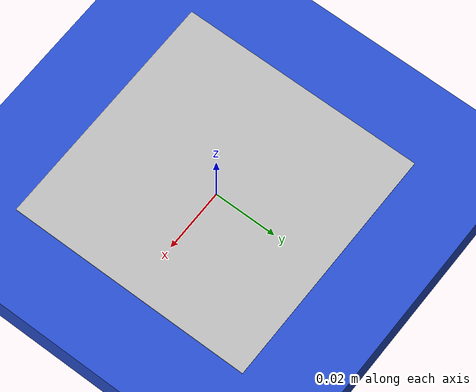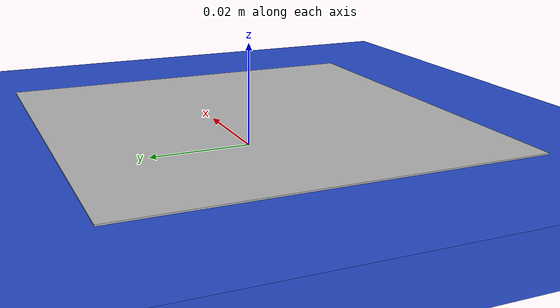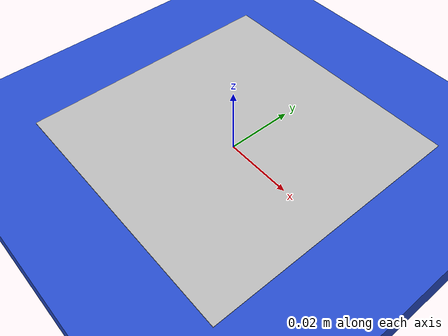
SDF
<?xml version="1.0" encoding="UTF-8"?>
<sdf version="1.4">
      <model name='blue_box'>
      <link name='plate'>
        <pose>0 0 0 0 -0 0</pose>
        <collision name='collision'>
          <geometry>
            <box>
              <size>0.5 0.5 0.01</size>
            </box>
          </geometry>
          <surface>
            <friction>
              <ode>
                <mu>0</mu>
                <mu2>0</mu2>
              </ode>
              <torsional>
                <ode/>
              </torsional>
            </friction>
            <contact>
              <ode/>
            </contact>
            <bounce/>
          </surface>
          <max_contacts>10</max_contacts>
        </collision>
        <visual name='visual'>
          <geometry>
            <box>
              <size>0.5 0.5 0.01</size>
            </box>
          </geometry>
          <material>
            <script>
              <uri>file://media/materials/scripts/gazebo.material</uri>
              <name>Gazebo/Blue</name>
            </script>
          </material>
        </visual>
        <self_collide>0</self_collide>
        <inertial>
          <pose>0 0 0 0 -0 0</pose>
          <inertia>
            <ixx>1</ixx>
            <ixy>0</ixy>
            <ixz>0</ixz>
            <iyy>1</iyy>
            <iyz>0</iyz>
            <izz>1</izz>
          </inertia>
          <mass>1</mass>
        </inertial>
        <enable_wind>0</enable_wind>
        <kinematic>0</kinematic>
        <velocity>0 0 0 0 -0 0</velocity>
        <acceleration>-0.004713 -9.7911 9.79156 0.732639 -0.009423 -4.3e-05</acceleration>
        <wrench>-0.004713 -9.7911 9.79156 0 -0 0</wrench>
      </link>
    <include name="aruco_6X6_250_10">
        <uri>model://aruco_6X6_250_10</uri>
        <pose>0 0 0.005 0 0 0</pose>
    </include>
    <joint name="aruco_6X6_250_10_joint" type="fixed">
        <parent>plate</parent>
        <child>aruco_6X6_250_10::tag</child>
        <pose>0 0 0 0 0 0</pose>
    </joint>
    <static>1</static>
    </model>

    </sdf>

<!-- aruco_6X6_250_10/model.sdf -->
<sdf version='1.6'>
    <model name='aruco_6X6_250_10'>
        <link name='tag'>
            <gravity>0</gravity>
            <inertial>
                <mass>0.001</mass>
                <inertia>
                    <ixx>1e-5</ixx><ixy>0</ixy><ixz>0</ixz>
                    <iyy>1e-5</iyy><iyz>0</iyz>
                    <izz>1e-5</izz>
                </inertia>
            </inertial>
            <visual name='front'>
                <pose>0 0 0 0 0 1.57075</pose>
                <geometry>
                    <box>
                        <size>0.07714285714285714 0.07714285714285714 0.0005</size>
                    </box>
                </geometry>
                <material>
                    <script>
                        <uri>model://aruco_6X6_250_10/materials/scripts</uri>
                        <uri>model://aruco_6X6_250_10/materials/textures</uri>
                        <name>aruco_6X6_250_10/Marker</name>
                    </script>
                </material>
            </visual>
            <visual name="back">
                <pose>0 0 -0.001 0 0 1.57075</pose>
                <geometry>
                    <box>
                        <size>0.07714285714285714 0.07714285714285714 0.001</size>
                    </box>
                </geometry>
                <material>
                    <ambient>0 0 0 1</ambient>
                    <diffuse>0 0 0 1</diffuse>
                </material>
            </visual>
        </link>
    </model>
</sdf>
